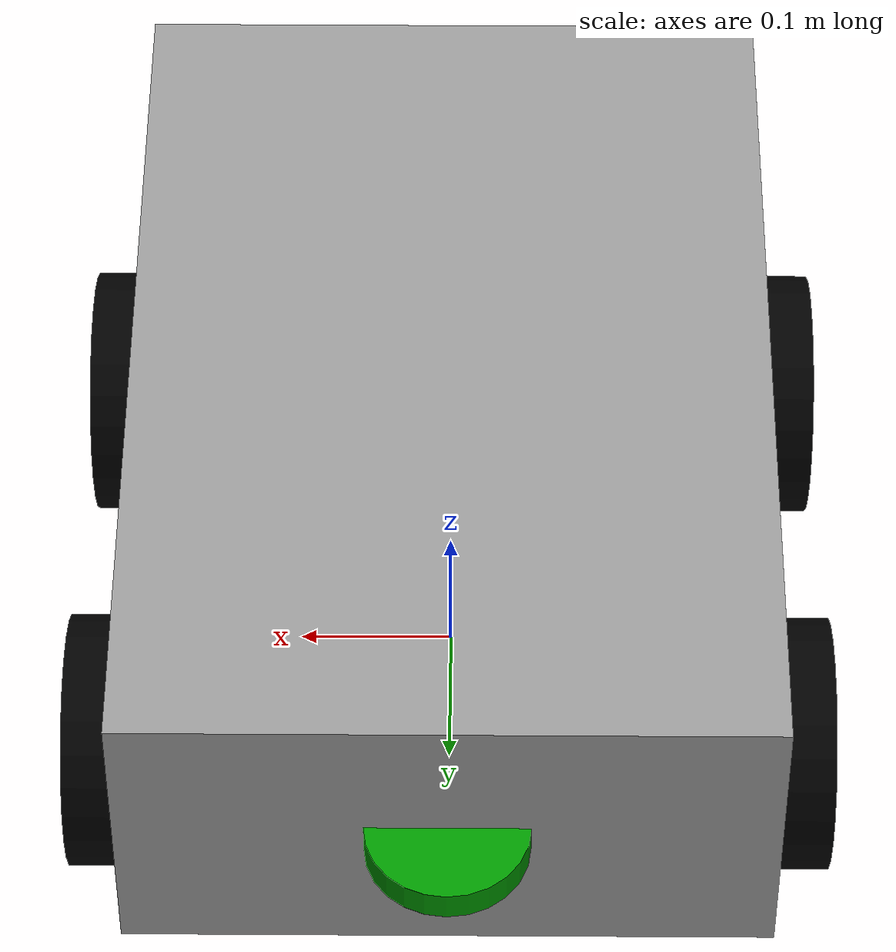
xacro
<?xml version="1.0"?>
<robot name="auto_vehicle" xmlns:xacro="http://www.ros.org/wiki/xacro">

    <!-- Common Properties -->

    <xacro:property name="wheel_radius" value="0.08"/>
    <xacro:property name="wheel_length" value="0.04"/>
    <xacro:property name="base_size" value="0.4 0.6 0.2"/>
    <xacro:property name="lidar_radius" value="0.05"/>
    <xacro:property name="lidar_length" value="0.02"/>

    <!-- Materials (same) -->

    <material name="grey"><color rgba="0.6 0.6 0.6 1.0"/></material>
    <material name="green"><color rgba="0.0 0.6 0.0 1.0"/></material>
    <material name="black"><color rgba="0.0 0.0 0.0 1.0"/></material>
    <material name="white"><color rgba="1.0 1.0 1.0 1.0"/></material>

    <!-- Macro -->

    <!--  Macro for Wheel Geometry  -->
    <xacro:macro name="wheel" params="name">
        <link name="${name}">
            <visual>
                <geometry>
                    <cylinder radius="${wheel_radius}" length="${wheel_length}"/>
                </geometry>
                <origin xyz="0 0 0" rpy="0 1.57 0"/>
                <material name="black"/>
            </visual>
            <collision>
                <geometry>
                    <cylinder radius="${wheel_radius}" length="${wheel_length}"/>
                </geometry>
                <origin xyz="0 0 0" rpy="0 1.57 0"/>
            </collision>
            <inertial>
                <mass value="0.5"/>
                <origin xyz="0 0 0" rpy="0 0 0"/>
                <inertia ixx="0.0016" ixy="0.0" ixz="0.0" iyy="0.000867" iyz="0.0" izz="0.000867"/>
            </inertial>
        </link>
    </xacro:macro>

    <!-- Macro for fixed joints -->
    <xacro:macro name="fixed_joint" params="name parent child xyz rpy">
        <joint name="${name}" type="fixed">
            <parent link="${parent}"/>
            <child link="${child}"/>
            <origin xyz="${xyz}" rpy="${rpy}"/>
        </joint>
    </xacro:macro>

    <!-- Macro for wheel joints -->
    <xacro:macro name="wheel_joint" params="name parent child xyz">
        <joint name="${name}" type="continuous">
            <parent link="${parent}"/>
            <child link="${child}"/>
            <origin xyz="${xyz}" rpy="0 0 0"/>
            <axis xyz="1 0 0"/>
        </joint>
    </xacro:macro>

    <!-- Links -->

    <link name="base_footprint">
        <inertial>
            <mass value="0.001"/>
            <origin xyz="0 0 0" rpy="0 0 0"/>
            <inertia ixx="0.0001" ixy="0.0" ixz="0.0" iyy="0.0001" iyz="0.0" izz="0.0001"/>
        </inertial>
    </link>

    <link name="base_link">
        <visual>
            <geometry>
                <box size="${base_size}"/>
            </geometry>
            <origin xyz="0 0 0.1" rpy="0 0 0"/>
            <material name="grey"/>
        </visual>
        <collision>
            <geometry>
                <box size="${base_size}"/>
            </geometry>
            <origin xyz="0 0 0.1" rpy="0 0 0"/>
        </collision>
        <inertial>
            <mass value="5.0"/>
            <origin xyz="0 0 0.1" rpy="0 0 0"/>
            <inertia ixx="0.2167" ixy="0.0" ixz="0.0" iyy="0.1" iyz="0.0" izz="0.2667"/>
        </inertial>
    </link>

    <link name="lidar">
        <visual>
            <geometry>
                <cylinder radius="${lidar_radius}" length="${lidar_length}"/>
            </geometry>
            <origin xyz="0 0 0" rpy="0 0 0"/>
            <material name="green"/>
        </visual>
        <collision>
            <geometry>
                <cylinder radius="${lidar_radius}" length="${lidar_length}"/>
            </geometry>
            <origin xyz="0 0 0" rpy="0 0 0"/>
        </collision>
        <inertial>
            <mass value="0.2"/>
            <origin xyz="0 0 0" rpy="0 0 0"/>
            <inertia ixx="0.0001" ixy="0.0" ixz="0.0" iyy="0.0001" iyz="0.0" izz="0.00025"/>
        </inertial>
    </link>

    <!-- Wheels as Links -->
    <link name="left_back_wheel">
        <visual>
            <geometry>
                <cylinder radius="${wheel_radius}" length="${wheel_length}"/>
            </geometry>
            <origin xyz="0 0 0" rpy="0 1.57 0"/>
            <material name="black"/>
        </visual>
        <collision>
            <geometry>
                <cylinder radius="${wheel_radius}" length="${wheel_length}"/>
            </geometry>
            <origin xyz="0 0 0" rpy="0 1.57 0"/>
        </collision>
        <inertial>
            <mass value="0.5"/>
            <origin xyz="0 0 0" rpy="0 0 0"/>
            <inertia ixx="0.0016" ixy="0.0" ixz="0.0" iyy="0.000867" iyz="0.0" izz="0.000867"/>
        </inertial>
    </link>

    <link name="right_back_wheel">
        <visual>
            <geometry>
                <cylinder radius="${wheel_radius}" length="${wheel_length}"/>
            </geometry>
            <origin xyz="0 0 0" rpy="0 1.57 0"/>
            <material name="black"/>
        </visual>
        <collision>
            <geometry>
                <cylinder radius="${wheel_radius}" length="${wheel_length}"/>
            </geometry>
            <origin xyz="0 0 0" rpy="0 1.57 0"/>
        </collision>
        <inertial>
            <mass value="0.5"/>
            <origin xyz="0 0 0" rpy="0 0 0"/>
            <inertia ixx="0.0016" ixy="0.0" ixz="0.0" iyy="0.000867" iyz="0.0" izz="0.000867"/>
        </inertial>
    </link>

    <link name="left_front_wheel">
        <visual>
            <geometry>
                <cylinder radius="${wheel_radius}" length="${wheel_length}"/>
            </geometry>
            <origin xyz="0 0 0" rpy="0 1.57 0"/>
            <material name="black"/>
        </visual>
        <collision>
            <geometry>
                <cylinder radius="${wheel_radius}" length="${wheel_length}"/>
            </geometry>
            <origin xyz="0 0 0" rpy="0 1.57 0"/>
        </collision>
        <inertial>
            <mass value="0.5"/>
            <origin xyz="0 0 0" rpy="0 0 0"/>
            <inertia ixx="0.0016" ixy="0.0" ixz="0.0" iyy="0.000867" iyz="0.0" izz="0.000867"/>
        </inertial>
    </link>

    <link name="right_front_wheel">
        <visual>
            <geometry>
                <cylinder radius="${wheel_radius}" length="${wheel_length}"/>
            </geometry>
            <origin xyz="0 0 0" rpy="0 1.57 0"/>
            <material name="black"/>
        </visual>
        <collision>
            <geometry>
                <cylinder radius="${wheel_radius}" length="${wheel_length}"/>
            </geometry>
            <origin xyz="0 0 0" rpy="0 1.57 0"/>
        </collision>
        <inertial>
            <mass value="0.5"/>
            <origin xyz="0 0 0" rpy="0 0 0"/>
            <inertia ixx="0.0016" ixy="0.0" ixz="0.0" iyy="0.000867" iyz="0.0" izz="0.000867"/>
        </inertial>
    </link>

    <!-- Joints -->

    <xacro:fixed_joint
        name="base_joint"
        parent="base_footprint"
        child="base_link"
        xyz="0 0 0.08"
        rpy="0 0 0"
    />

    <xacro:fixed_joint
        name="base_lidar_joint"
        parent="base_link"
        child="lidar"
        xyz="0 0.3 0.1"
        rpy="0 0 0"
    />

    <xacro:wheel_joint
        name="base_left_back_joint"
        parent="base_link"
        child="left_back_wheel"
        xyz="-0.22 -0.15 0"
    />

    <xacro:wheel_joint
        name="base_left_front_joint"
        parent="base_link"
        child="left_front_wheel"
        xyz="0.22 -0.15 0"
    />

    <xacro:wheel_joint
        name="base_right_back_joint"
        parent="base_link"
        child="right_back_wheel"
        xyz="-0.22 0.15 0"
    />

    <xacro:wheel_joint
        name="base_right_front_joint"
        parent="base_link"
        child="right_front_wheel"
        xyz="0.22 0.15 0"
    />

</robot>
